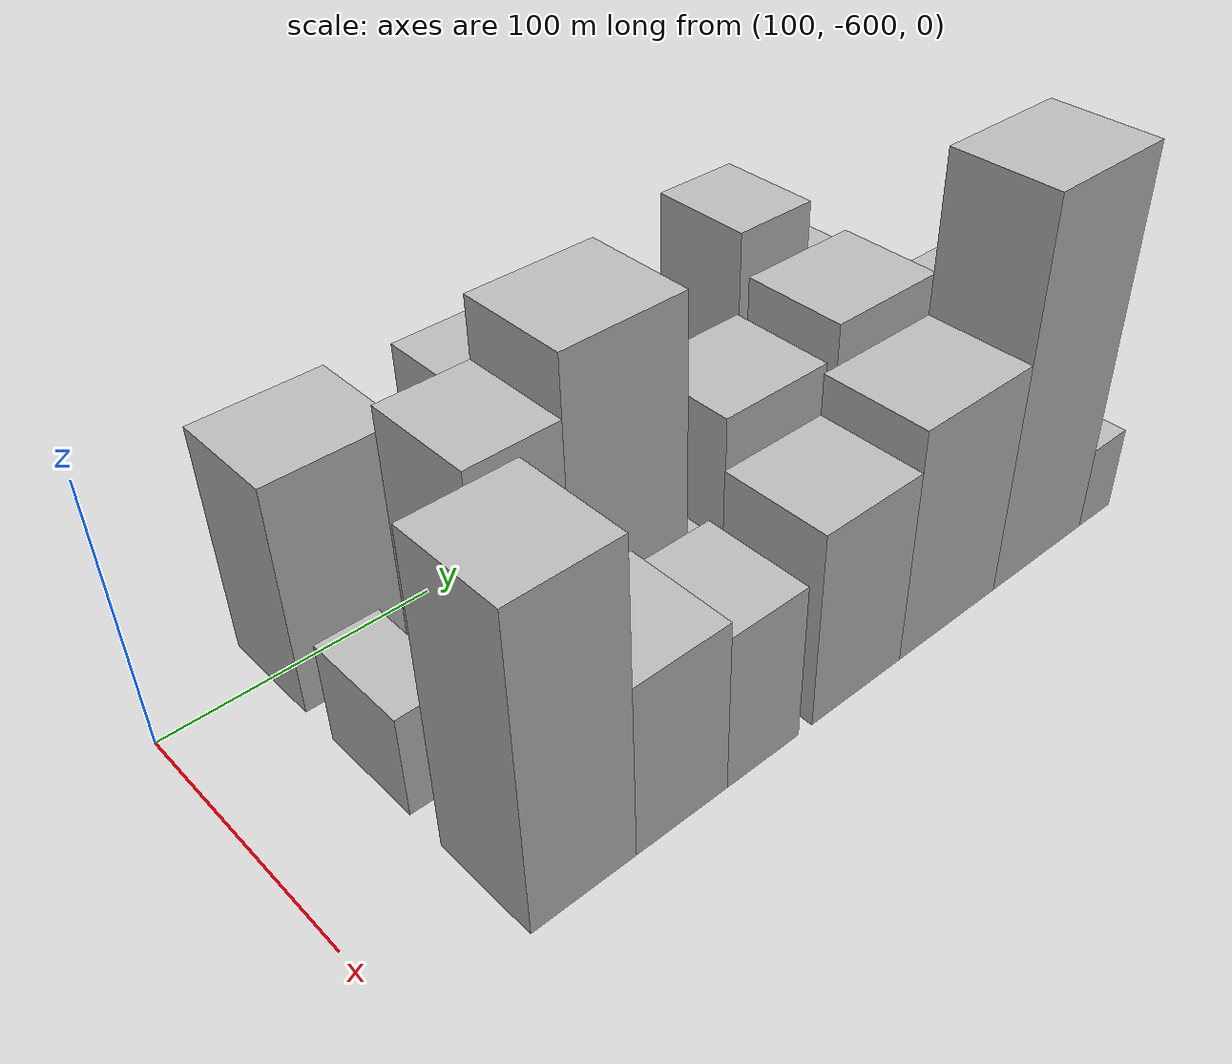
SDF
<sdf version="1.6">
 <world name="default">
  <model name="building_1">
   <static>1</static>
   <pose>100.0000 -536.5334 0 0.000000 0.000000 0.000000</pose>
   <link name="link">
    <pose>0 0 43.50 0 0 0</pose>
    <collision name="collision"><geometry><box><size>40.0000 46.9333 87.0000</size></box></geometry></collision>
    <visual name="visual">
     <cast_shadows>0</cast_shadows>
     <geometry><box><size>40.0000 46.9333 87.0000</size></box></geometry>
     <material>
      <script>
       <uri>model://HANNAS_wall/materials/scripts</uri>
       <uri>model://HANNAS_wall/materials/textures</uri>
       <name>vrc/HANNAS_wall</name>
      </script>
     </material>
    </visual>
   </link>
  </model>
  <model name="building_2">
   <static>1</static>
   <pose>100.0000 -502.4519 0 0.000000 0.000000 0.000000</pose>
   <link name="link">
    <pose>0 0 9.00 0 0 0</pose>
    <collision name="collision"><geometry><box><size>40.0000 7.2296 18.0000</size></box></geometry></collision>
    <visual name="visual">
     <cast_shadows>0</cast_shadows>
     <geometry><box><size>40.0000 7.2296 18.0000</size></box></geometry>
     <material>
      <script>
       <uri>model://HANNAS_wall/materials/scripts</uri>
       <uri>model://HANNAS_wall/materials/textures</uri>
       <name>vrc/HANNAS_wall</name>
      </script>
     </material>
    </visual>
   </link>
  </model>
  <model name="building_3">
   <static>1</static>
   <pose>100.0000 -466.6403 0 0.000000 0.000000 0.000000</pose>
   <link name="link">
    <pose>0 0 42.00 0 0 0</pose>
    <collision name="collision"><geometry><box><size>40.0000 44.3936 84.0000</size></box></geometry></collision>
    <visual name="visual">
     <cast_shadows>0</cast_shadows>
     <geometry><box><size>40.0000 44.3936 84.0000</size></box></geometry>
     <material>
      <script>
       <uri>model://HANNAS_wall/materials/scripts</uri>
       <uri>model://HANNAS_wall/materials/textures</uri>
       <name>vrc/HANNAS_wall</name>
      </script>
     </material>
    </visual>
   </link>
  </model>
  <model name="building_4">
   <static>1</static>
   <pose>100.0000 -431.0699 0 0.000000 0.000000 0.000000</pose>
   <link name="link">
    <pose>0 0 25.50 0 0 0</pose>
    <collision name="collision"><geometry><box><size>40.0000 26.7471 51.0000</size></box></geometry></collision>
    <visual name="visual">
     <cast_shadows>0</cast_shadows>
     <geometry><box><size>40.0000 26.7471 51.0000</size></box></geometry>
     <material>
      <script>
       <uri>model://HANNAS_wall/materials/scripts</uri>
       <uri>model://HANNAS_wall/materials/textures</uri>
       <name>vrc/HANNAS_wall</name>
      </script>
     </material>
    </visual>
   </link>
  </model>
  <model name="building_5">
   <static>1</static>
   <pose>100.0000 -405.0169 0 0.000000 0.000000 0.000000</pose>
   <link name="link">
    <pose>0 0 12.00 0 0 0</pose>
    <collision name="collision"><geometry><box><size>40.0000 11.3590 24.0000</size></box></geometry></collision>
    <visual name="visual">
     <cast_shadows>0</cast_shadows>
     <geometry><box><size>40.0000 11.3590 24.0000</size></box></geometry>
     <material>
      <script>
       <uri>model://HANNAS_wall/materials/scripts</uri>
       <uri>model://HANNAS_wall/materials/textures</uri>
       <name>vrc/HANNAS_wall</name>
      </script>
     </material>
    </visual>
   </link>
  </model>
  <model name="building_6">
   <static>1</static>
   <pose>100.0000 -394.4631 0 0.000000 0.000000 0.000000</pose>
   <link name="link">
    <pose>0 0 12.00 0 0 0</pose>
    <collision name="collision"><geometry><box><size>40.0000 9.7486 24.0000</size></box></geometry></collision>
    <visual name="visual">
     <cast_shadows>0</cast_shadows>
     <geometry><box><size>40.0000 9.7486 24.0000</size></box></geometry>
     <material>
      <script>
       <uri>model://HANNAS_wall/materials/scripts</uri>
       <uri>model://HANNAS_wall/materials/textures</uri>
       <name>vrc/HANNAS_wall</name>
      </script>
     </material>
    </visual>
   </link>
  </model>
  <model name="building_7">
   <static>1</static>
   <pose>100.0000 -384.7748 0 0.000000 0.000000 0.000000</pose>
   <link name="link">
    <pose>0 0 12.00 0 0 0</pose>
    <collision name="collision"><geometry><box><size>40.0000 9.6279 24.0000</size></box></geometry></collision>
    <visual name="visual">
     <cast_shadows>0</cast_shadows>
     <geometry><box><size>40.0000 9.6279 24.0000</size></box></geometry>
     <material>
      <script>
       <uri>model://HANNAS_wall/materials/scripts</uri>
       <uri>model://HANNAS_wall/materials/textures</uri>
       <name>vrc/HANNAS_wall</name>
      </script>
     </material>
    </visual>
   </link>
  </model>
  <model name="building_8">
   <static>1</static>
   <pose>100.0000 -357.0146 0 0.000000 0.000000 0.000000</pose>
   <link name="link">
    <pose>0 0 48.00 0 0 0</pose>
    <collision name="collision"><geometry><box><size>40.0000 33.8926 96.0000</size></box></geometry></collision>
    <visual name="visual">
     <cast_shadows>0</cast_shadows>
     <geometry><box><size>40.0000 33.8926 96.0000</size></box></geometry>
     <material>
      <script>
       <uri>model://HANNAS_wall/materials/scripts</uri>
       <uri>model://HANNAS_wall/materials/textures</uri>
       <name>vrc/HANNAS_wall</name>
      </script>
     </material>
    </visual>
   </link>
  </model>
  <model name="building_9">
   <static>1</static>
   <pose>100.0000 -323.3903 0 0.000000 0.000000 0.000000</pose>
   <link name="link">
    <pose>0 0 31.50 0 0 0</pose>
    <collision name="collision"><geometry><box><size>40.0000 33.3559 63.0000</size></box></geometry></collision>
    <visual name="visual">
     <cast_shadows>0</cast_shadows>
     <geometry><box><size>40.0000 33.3559 63.0000</size></box></geometry>
     <material>
      <script>
       <uri>model://HANNAS_wall/materials/scripts</uri>
       <uri>model://HANNAS_wall/materials/textures</uri>
       <name>vrc/HANNAS_wall</name>
      </script>
     </material>
    </visual>
   </link>
  </model>
  <model name="building_36">
   <static>1</static>
   <pose>155.0000 -548.8526 0 0.000000 0.000000 0.000000</pose>
   <link name="link">
    <pose>0 0 19.50 0 0 0</pose>
    <collision name="collision"><geometry><box><size>40.0000 22.2948 39.0000</size></box></geometry></collision>
    <visual name="visual">
     <cast_shadows>0</cast_shadows>
     <geometry><box><size>40.0000 22.2948 39.0000</size></box></geometry>
     <material>
      <script>
       <uri>model://HANNAS_wall/materials/scripts</uri>
       <uri>model://HANNAS_wall/materials/textures</uri>
       <name>vrc/HANNAS_wall</name>
      </script>
     </material>
    </visual>
   </link>
  </model>
  <model name="building_37">
   <static>1</static>
   <pose>155.0000 -533.7594 0 0.000000 0.000000 0.000000</pose>
   <link name="link">
    <pose>0 0 9.00 0 0 0</pose>
    <collision name="collision"><geometry><box><size>40.0000 7.8916 18.0000</size></box></geometry></collision>
    <visual name="visual">
     <cast_shadows>0</cast_shadows>
     <geometry><box><size>40.0000 7.8916 18.0000</size></box></geometry>
     <material>
      <script>
       <uri>model://HANNAS_wall/materials/scripts</uri>
       <uri>model://HANNAS_wall/materials/textures</uri>
       <name>vrc/HANNAS_wall</name>
      </script>
     </material>
    </visual>
   </link>
  </model>
  <model name="building_38">
   <static>1</static>
   <pose>155.0000 -513.3485 0 0.000000 0.000000 0.000000</pose>
   <link name="link">
    <pose>0 0 54.00 0 0 0</pose>
    <collision name="collision"><geometry><box><size>40.0000 32.9303 108.0000</size></box></geometry></collision>
    <visual name="visual">
     <cast_shadows>0</cast_shadows>
     <geometry><box><size>40.0000 32.9303 108.0000</size></box></geometry>
     <material>
      <script>
       <uri>model://HANNAS_wall/materials/scripts</uri>
       <uri>model://HANNAS_wall/materials/textures</uri>
       <name>vrc/HANNAS_wall</name>
      </script>
     </material>
    </visual>
   </link>
  </model>
  <model name="building_39">
   <static>1</static>
   <pose>155.0000 -473.8424 0 0.000000 0.000000 0.000000</pose>
   <link name="link">
    <pose>0 0 64.50 0 0 0</pose>
    <collision name="collision"><geometry><box><size>40.0000 46.0820 129.0000</size></box></geometry></collision>
    <visual name="visual">
     <cast_shadows>0</cast_shadows>
     <geometry><box><size>40.0000 46.0820 129.0000</size></box></geometry>
     <material>
      <script>
       <uri>model://HANNAS_wall/materials/scripts</uri>
       <uri>model://HANNAS_wall/materials/textures</uri>
       <name>vrc/HANNAS_wall</name>
      </script>
     </material>
    </visual>
   </link>
  </model>
  <model name="building_40">
   <static>1</static>
   <pose>155.0000 -442.7352 0 0.000000 0.000000 0.000000</pose>
   <link name="link">
    <pose>0 0 15.00 0 0 0</pose>
    <collision name="collision"><geometry><box><size>40.0000 16.1324 30.0000</size></box></geometry></collision>
    <visual name="visual">
     <cast_shadows>0</cast_shadows>
     <geometry><box><size>40.0000 16.1324 30.0000</size></box></geometry>
     <material>
      <script>
       <uri>model://HANNAS_wall/materials/scripts</uri>
       <uri>model://HANNAS_wall/materials/textures</uri>
       <name>vrc/HANNAS_wall</name>
      </script>
     </material>
    </visual>
   </link>
  </model>
  <model name="building_41">
   <static>1</static>
   <pose>155.0000 -412.4678 0 0.000000 0.000000 0.000000</pose>
   <link name="link">
    <pose>0 0 39.00 0 0 0</pose>
    <collision name="collision"><geometry><box><size>40.0000 44.4024 78.0000</size></box></geometry></collision>
    <visual name="visual">
     <cast_shadows>0</cast_shadows>
     <geometry><box><size>40.0000 44.4024 78.0000</size></box></geometry>
     <material>
      <script>
       <uri>model://HANNAS_wall/materials/scripts</uri>
       <uri>model://HANNAS_wall/materials/textures</uri>
       <name>vrc/HANNAS_wall</name>
      </script>
     </material>
    </visual>
   </link>
  </model>
  <model name="building_42">
   <static>1</static>
   <pose>155.0000 -361.7181 0 0.000000 0.000000 0.000000</pose>
   <link name="link">
    <pose>0 0 45.00 0 0 0</pose>
    <collision name="collision"><geometry><box><size>40.0000 47.0970 90.0000</size></box></geometry></collision>
    <visual name="visual">
     <cast_shadows>0</cast_shadows>
     <geometry><box><size>40.0000 47.0970 90.0000</size></box></geometry>
     <material>
      <script>
       <uri>model://HANNAS_wall/materials/scripts</uri>
       <uri>model://HANNAS_wall/materials/textures</uri>
       <name>vrc/HANNAS_wall</name>
      </script>
     </material>
    </visual>
   </link>
  </model>
  <model name="building_43">
   <static>1</static>
   <pose>155.0000 -329.0890 0 0.000000 0.000000 0.000000</pose>
   <link name="link">
    <pose>0 0 18.00 0 0 0</pose>
    <collision name="collision"><geometry><box><size>40.0000 18.1612 36.0000</size></box></geometry></collision>
    <visual name="visual">
     <cast_shadows>0</cast_shadows>
     <geometry><box><size>40.0000 18.1612 36.0000</size></box></geometry>
     <material>
      <script>
       <uri>model://HANNAS_wall/materials/scripts</uri>
       <uri>model://HANNAS_wall/materials/textures</uri>
       <name>vrc/HANNAS_wall</name>
      </script>
     </material>
    </visual>
   </link>
  </model>
  <model name="building_44">
   <static>1</static>
   <pose>155.0000 -293.4765 0 0.000000 0.000000 0.000000</pose>
   <link name="link">
    <pose>0 0 31.50 0 0 0</pose>
    <collision name="collision"><geometry><box><size>40.0000 35.0638 63.0000</size></box></geometry></collision>
    <visual name="visual">
     <cast_shadows>0</cast_shadows>
     <geometry><box><size>40.0000 35.0638 63.0000</size></box></geometry>
     <material>
      <script>
       <uri>model://HANNAS_wall/materials/scripts</uri>
       <uri>model://HANNAS_wall/materials/textures</uri>
       <name>vrc/HANNAS_wall</name>
      </script>
     </material>
    </visual>
   </link>
  </model>
  <model name="building_69">
   <static>1</static>
   <pose>210.0000 -541.1297 0 0.000000 0.000000 0.000000</pose>
   <link name="link">
    <pose>0 0 58.50 0 0 0</pose>
    <collision name="collision"><geometry><box><size>40.0000 37.7407 117.0000</size></box></geometry></collision>
    <visual name="visual">
     <cast_shadows>0</cast_shadows>
     <geometry><box><size>40.0000 37.7407 117.0000</size></box></geometry>
     <material>
      <script>
       <uri>model://HANNAS_wall/materials/scripts</uri>
       <uri>model://HANNAS_wall/materials/textures</uri>
       <name>vrc/HANNAS_wall</name>
      </script>
     </material>
    </visual>
   </link>
  </model>
  <model name="building_70">
   <static>1</static>
   <pose>210.0000 -504.4625 0 0.000000 0.000000 0.000000</pose>
   <link name="link">
    <pose>0 0 33.00 0 0 0</pose>
    <collision name="collision"><geometry><box><size>40.0000 35.5937 66.0000</size></box></geometry></collision>
    <visual name="visual">
     <cast_shadows>0</cast_shadows>
     <geometry><box><size>40.0000 35.5937 66.0000</size></box></geometry>
     <material>
      <script>
       <uri>model://HANNAS_wall/materials/scripts</uri>
       <uri>model://HANNAS_wall/materials/textures</uri>
       <name>vrc/HANNAS_wall</name>
      </script>
     </material>
    </visual>
   </link>
  </model>
  <model name="building_71">
   <static>1</static>
   <pose>210.0000 -471.5230 0 0.000000 0.000000 0.000000</pose>
   <link name="link">
    <pose>0 0 30.00 0 0 0</pose>
    <collision name="collision"><geometry><box><size>40.0000 30.2852 60.0000</size></box></geometry></collision>
    <visual name="visual">
     <cast_shadows>0</cast_shadows>
     <geometry><box><size>40.0000 30.2852 60.0000</size></box></geometry>
     <material>
      <script>
       <uri>model://HANNAS_wall/materials/scripts</uri>
       <uri>model://HANNAS_wall/materials/textures</uri>
       <name>vrc/HANNAS_wall</name>
      </script>
     </material>
    </visual>
   </link>
  </model>
  <model name="building_72">
   <static>1</static>
   <pose>210.0000 -429.8668 0 0.000000 0.000000 0.000000</pose>
   <link name="link">
    <pose>0 0 37.50 0 0 0</pose>
    <collision name="collision"><geometry><box><size>40.0000 41.0274 75.0000</size></box></geometry></collision>
    <visual name="visual">
     <cast_shadows>0</cast_shadows>
     <geometry><box><size>40.0000 41.0274 75.0000</size></box></geometry>
     <material>
      <script>
       <uri>model://HANNAS_wall/materials/scripts</uri>
       <uri>model://HANNAS_wall/materials/textures</uri>
       <name>vrc/HANNAS_wall</name>
      </script>
     </material>
    </visual>
   </link>
  </model>
  <model name="building_73">
   <static>1</static>
   <pose>210.0000 -384.9922 0 0.000000 0.000000 0.000000</pose>
   <link name="link">
    <pose>0 0 45.00 0 0 0</pose>
    <collision name="collision"><geometry><box><size>40.0000 48.7219 90.0000</size></box></geometry></collision>
    <visual name="visual">
     <cast_shadows>0</cast_shadows>
     <geometry><box><size>40.0000 48.7219 90.0000</size></box></geometry>
     <material>
      <script>
       <uri>model://HANNAS_wall/materials/scripts</uri>
       <uri>model://HANNAS_wall/materials/textures</uri>
       <name>vrc/HANNAS_wall</name>
      </script>
     </material>
    </visual>
   </link>
  </model>
  <model name="building_74">
   <static>1</static>
   <pose>210.0000 -335.8321 0 0.000000 0.000000 0.000000</pose>
   <link name="link">
    <pose>0 0 73.50 0 0 0</pose>
    <collision name="collision"><geometry><box><size>40.0000 49.5981 147.0000</size></box></geometry></collision>
    <visual name="visual">
     <cast_shadows>0</cast_shadows>
     <geometry><box><size>40.0000 49.5981 147.0000</size></box></geometry>
     <material>
      <script>
       <uri>model://HANNAS_wall/materials/scripts</uri>
       <uri>model://HANNAS_wall/materials/textures</uri>
       <name>vrc/HANNAS_wall</name>
      </script>
     </material>
    </visual>
   </link>
  </model>
  <model name="building_75">
   <static>1</static>
   <pose>210.0000 -301.9770 0 0.000000 0.000000 0.000000</pose>
   <link name="link">
    <pose>0 0 16.50 0 0 0</pose>
    <collision name="collision"><geometry><box><size>40.0000 18.1123 33.0000</size></box></geometry></collision>
    <visual name="visual">
     <cast_shadows>0</cast_shadows>
     <geometry><box><size>40.0000 18.1123 33.0000</size></box></geometry>
     <material>
      <script>
       <uri>model://HANNAS_wall/materials/scripts</uri>
       <uri>model://HANNAS_wall/materials/textures</uri>
       <name>vrc/HANNAS_wall</name>
      </script>
     </material>
    </visual>
   </link>
  </model>
 </world>
</sdf>
